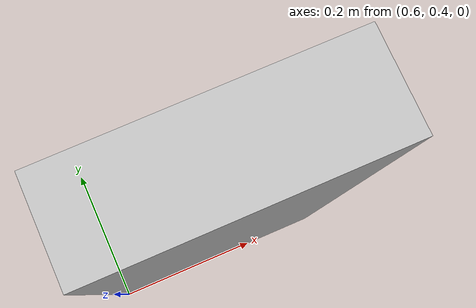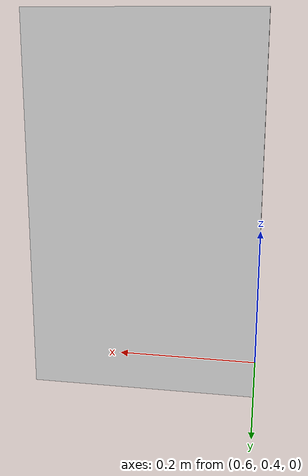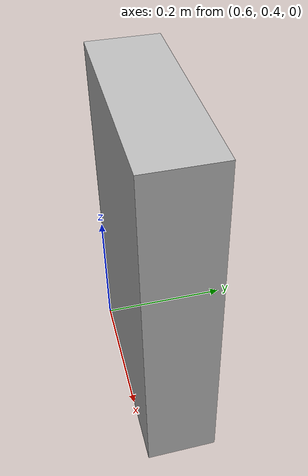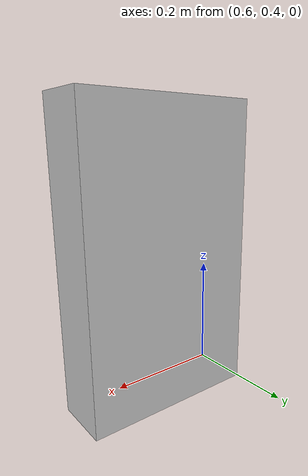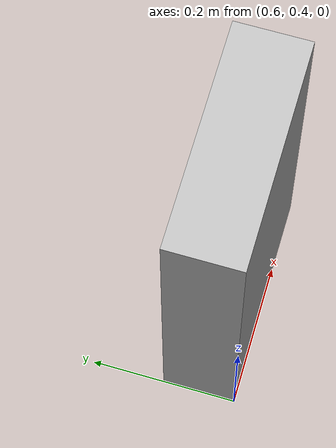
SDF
<?xml version="1.0"?>
<sdf version="1.6">
  <model name="box_b">
    <pose>0.75 0.45 0.25 0 0 0</pose>
    <static>true</static>
    <link name="link">
      <collision name="collision">
        <geometry>
          <box>
            <size>0.3 0.1 0.5</size>
          </box>
        </geometry>
      </collision>
      <visual name="visual">
        <geometry>
          <box>
            <size>0.3 0.1 0.5</size>
          </box>
        </geometry>
      </visual>
    </link>
  </model>
</sdf>
